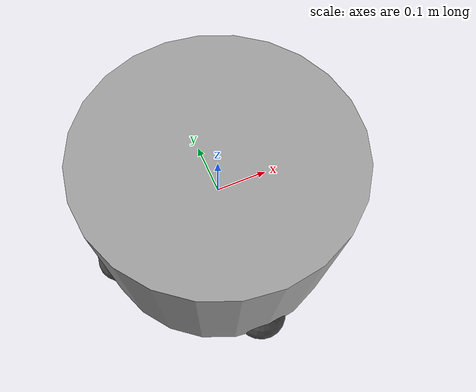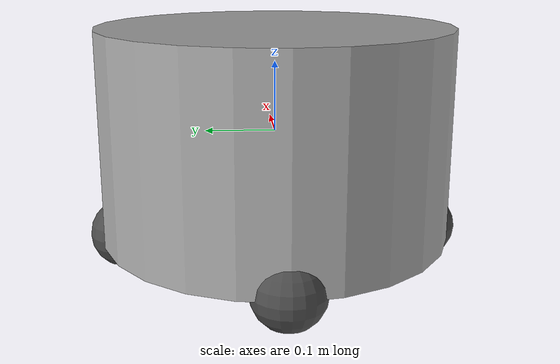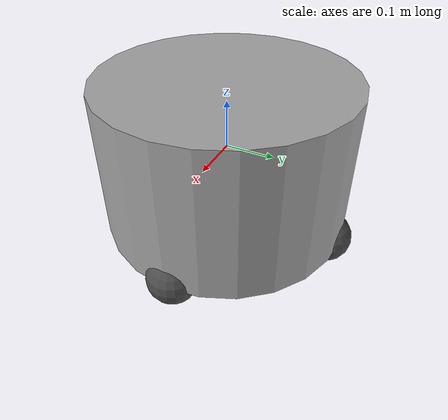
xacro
<?xml version="1.0"?>
<robot name="omni" xmlns:xacro="http://ros.org/wiki/xacro">

  <material name="grey">
    <color rgba="0.65 0.65 0.65 1"/>
  </material>

  <material name="black">
    <color rgba="0.3 0.3 0.3 1"/>
  </material>

  <xacro:macro name="default_inertial" params="mass">
    <inertial>
      <mass value="${mass}"/>
      <inertia ixx="1.0" ixy="0.0" ixz="0.0" iyy="1.0" iyz="0.0" izz="1.0"/>
    </inertial>
  </xacro:macro>

<link name="dummy"></link>

  <link name="base_link">
    <visual>
      <geometry>
        <cylinder length="0.3" radius="0.25"/>
      </geometry>
      <material name="grey"/>
    </visual>
    <collision>
      <geometry>
        <cylinder length="0.3" radius="0.25"/>
      </geometry>
    </collision>
    <xacro:default_inertial mass="10"/>
  </link>
  <joint name="dummy_joint" type="fixed">
    <parent link="dummy"/>
    <child link="base_link"/>
  </joint>

  <xacro:macro name="wheel_link" params="name linkrpy axisxyz originxyz">

    <link name="${name}_wheel">
      <visual>
        <geometry>
          <sphere radius="0.05"/>
        </geometry>
        <origin xyz="0 0 0" rpy="${linkrpy}"/>
        <material name="black"/>
      </visual>
      <collision>
        <geometry>
          <sphere radius="0.05"/>
        </geometry>
        <origin xyz="0 0 0" rpy="${linkrpy}"/>
      </collision>
      <xacro:default_inertial mass="1"/>
    </link>

    <joint name="${name}_wheel_joint" type="continuous">
      <axis rpy="0 0 0" xyz="${axisxyz}"/>
      <parent link="base_link"/>
      <child link="${name}_wheel"/>
      <origin xyz="${originxyz}"/>
    </joint>

    <!-- This block provides the simulator (Gazebo) with information on a few additional
    physical properties. See http://gazebosim.org/tutorials/?tut=ros_urdf for more-->
    <gazebo reference="${name}_wheel">
      <mu1 value="1.0"/>
      <mu2 value="1.0"/>
      <kp value="10000000.0" />
      <kd value="1.0" />
      <material>Gazebo/Grey</material>
    </gazebo>

    <!-- This block connects the wheel joint to an actuator (motor), which informs both
    simulation and visualization of the robot -->
    <transmission name="${name}_wheel_trans">
      <type>transmission_interface/SimpleTransmission</type>
      <actuator name="${name}_wheel_motor">
        <mechanicalReduction>1</mechanicalReduction>
      </actuator>
      <joint name="${name}_wheel_joint">
        <hardwareInterface>VelocityJointInterface</hardwareInterface>
      </joint>
    </transmission>

  </xacro:macro>

  <xacro:wheel_link name="left" linkrpy="0 0 0" axisxyz="1 0 0" originxyz="0.22 0 -0.15"/>
  <xacro:wheel_link name="right" linkrpy="0 0 0" axisxyz="1 0 0" originxyz="-0.22 0 -0.15"/>

  <xacro:macro name="ball_link" params="name linkrpy axisxyz originxyz">
    <link name="${name}_ball">
      <visual>
        <geometry>
          <sphere radius="0.05"/>
        </geometry>
        <origin xyz="0 0 0" rpy="${linkrpy}"/>
        <material name="black"/>
      </visual>
      <collision>
        <geometry>
          <sphere radius="0.05"/>
        </geometry>
        <origin xyz="0 0 0" rpy="${linkrpy}"/>
      </collision>
      <xacro:default_inertial mass="1"/>
    </link>

    <joint name="${name}_ball_joint" type="fixed">
      <axis rpy="0 0 0" xyz="${axisxyz}"/>
      <parent link="base_link"/>
      <child link="${name}_ball"/>
      <origin xyz="${originxyz}"/>
    </joint>

    <!-- This block provides the simulator (Gazebo) with information on a few additional
    physical properties. See http://gazebosim.org/tutorials/?tut=ros_urdf for more-->
    <gazebo reference="${name}_wheel">
      <mu1 value="0.0"/>
      <mu2 value="0.0"/>
      <kp value="10000000.0" />
      <kd value="1.0" />
      <material>Gazebo/Black</material>
    </gazebo>

  </xacro:macro>

  <xacro:ball_link name="front" linkrpy="0 0 0" axisxyz="0 0 0" originxyz="0 0.22 -0.15"/>
  <xacro:ball_link name="back" linkrpy="0 0 0" axisxyz="0 0 0" originxyz="0 -0.22 -0.15"/>

  <!-- Gazebo plugin for Ros Control-->
  <gazebo>
    <plugin name="gazebo_ros_control" filename="libgazebo_ros_control.so">
      <robotNamespace>/</robotNamespace>
    </plugin>
  </gazebo>

</robot>
